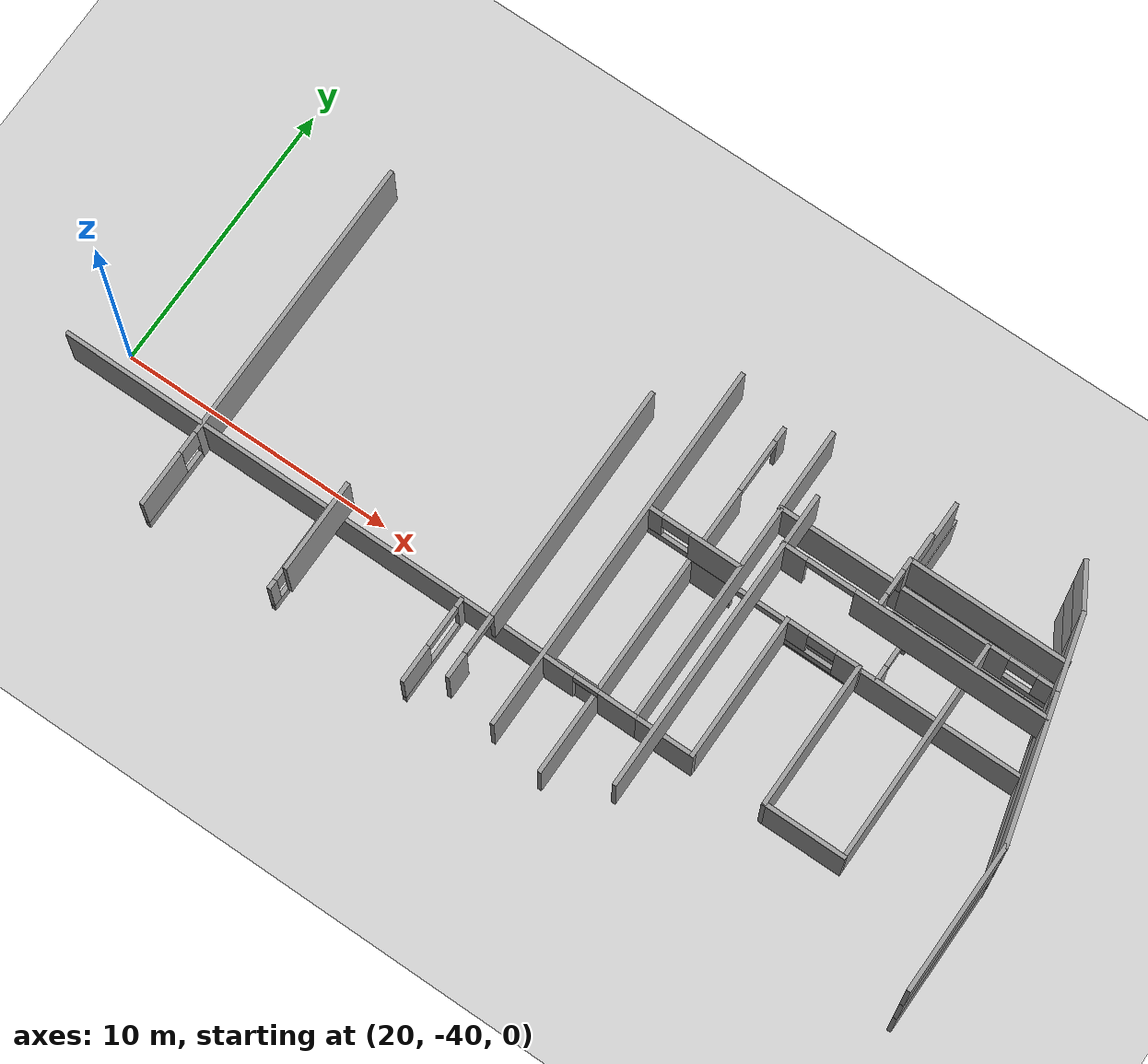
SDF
<sdf version="1.7">
 <world name="default">
  <model name="ground_plane">
   <static>1</static>
   <link name="link">
    <collision name="collision">
     <geometry><plane><normal>0 0 1</normal><size>100 100</size></plane></geometry>
     <surface><friction><ode><mu>100</mu><mu2>50</mu2></ode></friction></surface>
    </collision>
    <visual name="visual">
     <cast_shadows>0</cast_shadows>
     <geometry><plane><normal>0 0 1</normal><size>100 100</size></plane></geometry>
     <material>
      <script><uri>file://media/materials/scripts/gazebo.material</uri><name>Gazebo/Grey</name></script>
     </material>
    </visual>
   </link>
  </model>
  <model name="Anselm_Turmeda">
   <pose>-32.7988 -2.37459 0 0 -0 0</pose>
   <link name="Wall_2">
    <collision name="Wall_2_Collision">
     <geometry><box><size>5.25 0.15 2.5</size></box></geometry>
     <pose>0 0 1.25 0 -0 0</pose>
    </collision>
    <visual name="Wall_2_Visual">
     <pose>0 0 1.25 0 -0 0</pose>
     <geometry><box><size>5.25 0.15 2.5</size></box></geometry>
     <material>
      <script><uri>file://media/materials/scripts/gazebo.material</uri><name>Gazebo/Grey</name></script>
      <ambient>1 1 1 1</ambient>
     </material>
     <meta><layer>0</layer></meta>
    </visual>
    <pose>84.8019 -39.3043 0 0 -0 1.5708</pose>
   </link>
   <link name="Wall_219">
    <collision name="Wall_219_Collision">
     <geometry><box><size>1.5 0.15 1.2</size></box></geometry>
     <pose>0 0 0.6 0 -0 0</pose>
    </collision>
    <visual name="Wall_219_Visual">
     <pose>0 0 0.6 0 -0 0</pose>
     <geometry><box><size>1.5 0.15 1.2</size></box></geometry>
     <material>
      <script><uri>file://media/materials/scripts/gazebo.material</uri><name>Gazebo/Grey</name></script>
      <ambient>1 1 1 1</ambient>
     </material>
     <meta><layer>2</layer></meta>
    </visual>
    <pose>77.7556 -30.4238 5 0 -0 -1.5708</pose>
   </link>
   <link name="Wall_221">
    <collision name="Wall_221_Collision">
     <geometry><box><size>5.7 0.15 2.5</size></box></geometry>
     <pose>0 0 1.25 0 -0 0</pose>
    </collision>
    <visual name="Wall_221_Visual">
     <pose>0 0 1.25 0 -0 0</pose>
     <geometry><box><size>5.7 0.15 2.5</size></box></geometry>
     <material>
      <script><uri>file://media/materials/scripts/gazebo.material</uri><name>Gazebo/Grey</name></script>
      <ambient>1 1 1 1</ambient>
     </material>
     <meta><layer>2</layer></meta>
    </visual>
    <pose>80.5306 -31.0988 5 0 -0 0</pose>
   </link>
   <link name="Wall_224">
    <collision name="Wall_224_Collision">
     <geometry><box><size>10.75 0.15 2.5</size></box></geometry>
     <pose>0 0 1.25 0 -0 0</pose>
    </collision>
    <visual name="Wall_224_Visual">
     <pose>0 0 1.25 0 -0 0</pose>
     <geometry><box><size>10.75 0.15 2.5</size></box></geometry>
     <material>
      <script><uri>file://media/materials/scripts/gazebo.material</uri><name>Gazebo/Grey</name></script>
      <ambient>1 1 1 1</ambient>
     </material>
     <meta><layer>2</layer></meta>
    </visual>
    <pose>74.3895 -36.3854 5 0 -0 -1.5708</pose>
   </link>
   <link name="Wall_231">
    <pose>79.0457 -32.8366 5 0 -0 0</pose>
    <visual name="Wall_231_Visual_0">
     <pose>-4.28471 0 1.25 0 -0 0</pose>
     <geometry><box><size>0.930572 0.15 2.5</size></box></geometry>
     <material>
      <script><uri>file://media/materials/scripts/gazebo.material</uri><name>Gazebo/Grey</name></script>
      <ambient>1 1 1 1</ambient>
     </material>
     <meta><layer>2</layer></meta>
    </visual>
    <collision name="Wall_231_Collision_0">
     <geometry><box><size>0.930572 0.15 2.5</size></box></geometry>
     <pose>-4.28471 0 1.25 0 -0 0</pose>
    </collision>
    <visual name="Wall_231_Visual_1">
     <pose>1.32666 0 1.25 0 -0 0</pose>
     <geometry><box><size>6.84669 0.15 2.5</size></box></geometry>
     <material>
      <script><uri>file://media/materials/scripts/gazebo.material</uri><name>Gazebo/Grey</name></script>
      <ambient>1 1 1 1</ambient>
     </material>
     <meta><layer>2</layer></meta>
    </visual>
    <collision name="Wall_231_Collision_1">
     <geometry><box><size>6.84669 0.15 2.5</size></box></geometry>
     <pose>1.32666 0 1.25 0 -0 0</pose>
    </collision>
    <visual name="Wall_231_Visual_2">
     <pose>-2.95806 0 2.25 0 -0 0</pose>
     <geometry><box><size>1.72274 0.15 0.5</size></box></geometry>
     <material>
      <script><uri>file://media/materials/scripts/gazebo.material</uri><name>Gazebo/Grey</name></script>
      <ambient>1 1 1 1</ambient>
     </material>
     <meta><layer>2</layer></meta>
    </visual>
    <collision name="Wall_231_Collision_2">
     <geometry><box><size>1.72274 0.15 0.5</size></box></geometry>
     <pose>-2.95806 0 2.25 0 -0 0</pose>
    </collision>
   </link>
   <link name="Wall_235">
    <pose>77.7556 -31.8988 5 0 -0 -1.5708</pose>
    <visual name="Wall_235_Visual_0">
     <pose>-0.650398 0 1.25 0 -0 0</pose>
     <geometry><box><size>0.449204 0.15 2.5</size></box></geometry>
     <material>
      <script><uri>file://media/materials/scripts/gazebo.material</uri><name>Gazebo/Grey</name></script>
      <ambient>1 1 1 1</ambient>
     </material>
     <meta><layer>2</layer></meta>
    </visual>
    <collision name="Wall_235_Collision_0">
     <geometry><box><size>0.449204 0.15 2.5</size></box></geometry>
     <pose>-0.650398 0 1.25 0 -0 0</pose>
    </collision>
    <visual name="Wall_235_Visual_1">
     <pose>0.674602 0 1.25 0 -0 0</pose>
     <geometry><box><size>0.400796 0.15 2.5</size></box></geometry>
     <material>
      <script><uri>file://media/materials/scripts/gazebo.material</uri><name>Gazebo/Grey</name></script>
      <ambient>1 1 1 1</ambient>
     </material>
     <meta><layer>2</layer></meta>
    </visual>
    <collision name="Wall_235_Collision_1">
     <geometry><box><size>0.400796 0.15 2.5</size></box></geometry>
     <pose>0.674602 0 1.25 0 -0 0</pose>
    </collision>
    <visual name="Wall_235_Visual_2">
     <pose>0.024204 0 2.25 0 -0 0</pose>
     <geometry><box><size>0.9 0.15 0.5</size></box></geometry>
     <material>
      <script><uri>file://media/materials/scripts/gazebo.material</uri><name>Gazebo/Grey</name></script>
      <ambient>1 1 1 1</ambient>
     </material>
     <meta><layer>2</layer></meta>
    </visual>
    <collision name="Wall_235_Collision_2">
     <geometry><box><size>0.9 0.15 0.5</size></box></geometry>
     <pose>0.024204 0 2.25 0 -0 0</pose>
    </collision>
   </link>
   <link name="Wall_238">
    <pose>68.4981 -36.5099 5 0 -0 1.5708</pose>
    <visual name="Wall_238_Visual_0">
     <pose>-4.91976 0 1.25 0 -0 0</pose>
     <geometry><box><size>0.91049 0.15 2.5</size></box></geometry>
     <material>
      <script><uri>file://media/materials/scripts/gazebo.material</uri><name>Gazebo/Grey</name></script>
      <ambient>1 1 1 1</ambient>
     </material>
     <meta><layer>2</layer></meta>
    </visual>
    <collision name="Wall_238_Collision_0">
     <geometry><box><size>0.91049 0.15 2.5</size></box></geometry>
     <pose>-4.91976 0 1.25 0 -0 0</pose>
    </collision>
    <visual name="Wall_238_Visual_1">
     <pose>1.14833 0 1.25 0 -0 0</pose>
     <geometry><box><size>8.45334 0.15 2.5</size></box></geometry>
     <material>
      <script><uri>file://media/materials/scripts/gazebo.material</uri><name>Gazebo/Grey</name></script>
      <ambient>1 1 1 1</ambient>
     </material>
     <meta><layer>2</layer></meta>
    </visual>
    <collision name="Wall_238_Collision_1">
     <geometry><box><size>8.45334 0.15 2.5</size></box></geometry>
     <pose>1.14833 0 1.25 0 -0 0</pose>
    </collision>
    <visual name="Wall_238_Visual_2">
     <pose>-3.77143 0 2.25 0 -0 0</pose>
     <geometry><box><size>1.38617 0.15 0.5</size></box></geometry>
     <material>
      <script><uri>file://media/materials/scripts/gazebo.material</uri><name>Gazebo/Grey</name></script>
      <ambient>1 1 1 1</ambient>
     </material>
     <meta><layer>2</layer></meta>
    </visual>
    <collision name="Wall_238_Collision_2">
     <geometry><box><size>1.38617 0.15 0.5</size></box></geometry>
     <pose>-3.77143 0 2.25 0 -0 0</pose>
    </collision>
   </link>
   <link name="Wall_265">
    <collision name="Wall_265_Collision">
     <geometry><box><size>3.25 0.15 2.5</size></box></geometry>
     <pose>0 0 1.25 0 -0 0</pose>
    </collision>
    <visual name="Wall_265_Visual">
     <pose>0 0 1.25 0 -0 0</pose>
     <geometry><box><size>3.25 0.15 2.5</size></box></geometry>
     <material>
      <script><uri>file://media/materials/scripts/gazebo.material</uri><name>Gazebo/Grey</name></script>
      <ambient>1 1 1 1</ambient>
     </material>
     <meta><layer>2</layer></meta>
    </visual>
    <pose>62.6155 -40.2977 5 0 -0 1.5708</pose>
   </link>
   <link name="Wall_27">
    <collision name="Wall_27_Collision">
     <geometry><box><size>5.25 0.15 2.5</size></box></geometry>
     <pose>0 0 1.25 0 -0 0</pose>
    </collision>
    <visual name="Wall_27_Visual">
     <pose>0 0 1.25 0 -0 0</pose>
     <geometry><box><size>5.25 0.15 2.5</size></box></geometry>
     <material>
      <script><uri>file://media/materials/scripts/gazebo.material</uri><name>Gazebo/Grey</name></script>
      <ambient>1 1 1 1</ambient>
     </material>
     <meta><layer>1</layer></meta>
    </visual>
    <pose>84.8019 -39.3043 2.5 0 -0 1.5708</pose>
   </link>
   <link name="Wall_28">
    <collision name="Wall_28_Collision">
     <geometry><box><size>5 0.15 2.5</size></box></geometry>
     <pose>0 0 1.25 0 -0 0</pose>
    </collision>
    <visual name="Wall_28_Visual">
     <pose>0 0 1.25 0 -0 0</pose>
     <geometry><box><size>5 0.15 2.5</size></box></geometry>
     <material>
      <script><uri>file://media/materials/scripts/gazebo.material</uri><name>Gazebo/Grey</name></script>
      <ambient>1 1 1 1</ambient>
     </material>
     <meta><layer>1</layer></meta>
    </visual>
    <pose>84.1743 -34.4119 2.5 0 -0 1.8326</pose>
   </link>
   <link name="Wall_29">
    <collision name="Wall_29_Collision">
     <geometry><box><size>2.75 0.15 2.5</size></box></geometry>
     <pose>0 0 1.25 0 -0 0</pose>
    </collision>
    <visual name="Wall_29_Visual">
     <pose>0 0 1.25 0 -0 0</pose>
     <geometry><box><size>2.75 0.15 2.5</size></box></geometry>
     <material>
      <script><uri>file://media/materials/scripts/gazebo.material</uri><name>Gazebo/Grey</name></script>
      <ambient>1 1 1 1</ambient>
     </material>
     <meta><layer>1</layer></meta>
    </visual>
    <pose>83.2102 -30.8139 2.5 0 -0 1.8326</pose>
   </link>
   <link name="Wall_3">
    <collision name="Wall_3_Collision">
     <geometry><box><size>5 0.15 2.5</size></box></geometry>
     <pose>0 0 1.25 0 -0 0</pose>
    </collision>
    <visual name="Wall_3_Visual">
     <pose>0 0 1.25 0 -0 0</pose>
     <geometry><box><size>5 0.15 2.5</size></box></geometry>
     <material>
      <script><uri>file://media/materials/scripts/gazebo.material</uri><name>Gazebo/Grey</name></script>
      <ambient>1 1 1 1</ambient>
     </material>
     <meta><layer>0</layer></meta>
    </visual>
    <pose>84.1743 -34.4119 0 0 -0 1.8326</pose>
   </link>
   <link name="Wall_30">
    <collision name="Wall_30_Collision">
     <geometry><box><size>1.75 0.15 2.5</size></box></geometry>
     <pose>0 0 1.25 0 -0 0</pose>
    </collision>
    <visual name="Wall_30_Visual">
     <pose>0 0 1.25 0 -0 0</pose>
     <geometry><box><size>1.75 0.15 2.5</size></box></geometry>
     <material>
      <script><uri>file://media/materials/scripts/gazebo.material</uri><name>Gazebo/Grey</name></script>
      <ambient>1 1 1 1</ambient>
     </material>
     <meta><layer>1</layer></meta>
    </visual>
    <pose>82.4737 -28.8653 2.5 0 -0 2.0944</pose>
   </link>
   <link name="Wall_4">
    <collision name="Wall_4_Collision">
     <geometry><box><size>2.75 0.15 2.5</size></box></geometry>
     <pose>0 0 1.25 0 -0 0</pose>
    </collision>
    <visual name="Wall_4_Visual">
     <pose>0 0 1.25 0 -0 0</pose>
     <geometry><box><size>2.75 0.15 2.5</size></box></geometry>
     <material>
      <script><uri>file://media/materials/scripts/gazebo.material</uri><name>Gazebo/Grey</name></script>
      <ambient>1 1 1 1</ambient>
     </material>
     <meta><layer>0</layer></meta>
    </visual>
    <pose>83.2102 -30.8139 0 0 -0 1.8326</pose>
   </link>
   <link name="Wall_415">
    <pose>71.7077 -30.9828 0 0 -0 -1.57562</pose>
    <visual name="Wall_415_Visual_0">
     <pose>-2.35717 0 1.25 0 -0 0</pose>
     <geometry><box><size>0.53565 0.15 2.5</size></box></geometry>
     <material>
      <script><uri>file://media/materials/scripts/gazebo.material</uri><name>Gazebo/Grey</name></script>
      <ambient>1 1 1 1</ambient>
     </material>
     <meta><layer>0</layer></meta>
    </visual>
    <collision name="Wall_415_Collision_0">
     <geometry><box><size>0.53565 0.15 2.5</size></box></geometry>
     <pose>-2.35717 0 1.25 0 -0 0</pose>
    </collision>
    <visual name="Wall_415_Visual_1">
     <pose>1.24169 0 1.25 0 -0 0</pose>
     <geometry><box><size>2.76663 0.15 2.5</size></box></geometry>
     <material>
      <script><uri>file://media/materials/scripts/gazebo.material</uri><name>Gazebo/Grey</name></script>
      <ambient>1 1 1 1</ambient>
     </material>
     <meta><layer>0</layer></meta>
    </visual>
    <collision name="Wall_415_Collision_1">
     <geometry><box><size>2.76663 0.15 2.5</size></box></geometry>
     <pose>1.24169 0 1.25 0 -0 0</pose>
    </collision>
    <visual name="Wall_415_Visual_2">
     <pose>-1.11549 0 2.25 0 -0 0</pose>
     <geometry><box><size>1.94772 0.15 0.5</size></box></geometry>
     <material>
      <script><uri>file://media/materials/scripts/gazebo.material</uri><name>Gazebo/Grey</name></script>
      <ambient>1 1 1 1</ambient>
     </material>
     <meta><layer>0</layer></meta>
    </visual>
    <collision name="Wall_415_Collision_2">
     <geometry><box><size>1.94772 0.15 0.5</size></box></geometry>
     <pose>-1.11549 0 2.25 0 -0 0</pose>
    </collision>
   </link>
   <link name="Wall_416">
    <pose>77.7577 -33.5328 0 0 -0 0</pose>
    <visual name="Wall_416_Visual_0">
     <pose>-5.3174 0 1.25 0 -0 0</pose>
     <geometry><box><size>1.63978 0.15 2.5</size></box></geometry>
     <material>
      <script><uri>file://media/materials/scripts/gazebo.material</uri><name>Gazebo/Grey</name></script>
      <ambient>1 1 1 1</ambient>
     </material>
     <meta><layer>0</layer></meta>
    </visual>
    <collision name="Wall_416_Collision_0">
     <geometry><box><size>1.63978 0.15 2.5</size></box></geometry>
     <pose>-5.3174 0 1.25 0 -0 0</pose>
    </collision>
    <visual name="Wall_416_Visual_1">
     <pose>1.80444 0 1.25 0 -0 0</pose>
     <geometry><box><size>8.66571 0.15 2.5</size></box></geometry>
     <material>
      <script><uri>file://media/materials/scripts/gazebo.material</uri><name>Gazebo/Grey</name></script>
      <ambient>1 1 1 1</ambient>
     </material>
     <meta><layer>0</layer></meta>
    </visual>
    <collision name="Wall_416_Collision_1">
     <geometry><box><size>8.66571 0.15 2.5</size></box></geometry>
     <pose>1.80444 0 1.25 0 -0 0</pose>
    </collision>
    <visual name="Wall_416_Visual_2">
     <pose>-3.51296 0 2.25 0 -0 0</pose>
     <geometry><box><size>1.9691 0.15 0.5</size></box></geometry>
     <material>
      <script><uri>file://media/materials/scripts/gazebo.material</uri><name>Gazebo/Grey</name></script>
      <ambient>1 1 1 1</ambient>
     </material>
     <meta><layer>0</layer></meta>
    </visual>
    <collision name="Wall_416_Collision_2">
     <geometry><box><size>1.9691 0.15 0.5</size></box></geometry>
     <pose>-3.51296 0 2.25 0 -0 0</pose>
    </collision>
   </link>
   <link name="Wall_418">
    <pose>80.6074 -31.3384 0 0 -0 0</pose>
    <visual name="Wall_418_Visual_0">
     <pose>-0.813134 0 1.25 0 -0 0</pose>
     <geometry><box><size>4.02373 0.15 2.5</size></box></geometry>
     <material>
      <script><uri>file://media/materials/scripts/gazebo.material</uri><name>Gazebo/Grey</name></script>
      <ambient>1 1 1 1</ambient>
     </material>
     <meta><layer>0</layer></meta>
    </visual>
    <collision name="Wall_418_Collision_0">
     <geometry><box><size>4.02373 0.15 2.5</size></box></geometry>
     <pose>-0.813134 0 1.25 0 -0 0</pose>
    </collision>
    <visual name="Wall_418_Visual_1">
     <pose>2.01187 0 0.6 0 -0 0</pose>
     <geometry><box><size>1.62627 0.15 1.2</size></box></geometry>
     <material>
      <script><uri>file://media/materials/scripts/gazebo.material</uri><name>Gazebo/Grey</name></script>
      <ambient>1 1 1 1</ambient>
     </material>
     <meta><layer>0</layer></meta>
    </visual>
    <collision name="Wall_418_Collision_1">
     <geometry><box><size>1.62627 0.15 1.2</size></box></geometry>
     <pose>2.01187 0 0.6 0 -0 0</pose>
    </collision>
    <visual name="Wall_418_Visual_2">
     <pose>2.41187 0 1.85 0 -0 0</pose>
     <geometry><box><size>0.826268 0.15 1.3</size></box></geometry>
     <material>
      <script><uri>file://media/materials/scripts/gazebo.material</uri><name>Gazebo/Grey</name></script>
      <ambient>1 1 1 1</ambient>
     </material>
     <meta><layer>0</layer></meta>
    </visual>
    <collision name="Wall_418_Collision_2">
     <geometry><box><size>0.826268 0.15 1.3</size></box></geometry>
     <pose>2.41187 0 1.85 0 -0 0</pose>
    </collision>
    <visual name="Wall_418_Visual_3">
     <pose>1.59873 0 2.25 0 -0 0</pose>
     <geometry><box><size>0.8 0.15 0.5</size></box></geometry>
     <material>
      <script><uri>file://media/materials/scripts/gazebo.material</uri><name>Gazebo/Grey</name></script>
      <ambient>1 1 1 1</ambient>
     </material>
     <meta><layer>0</layer></meta>
    </visual>
    <collision name="Wall_418_Collision_3">
     <geometry><box><size>0.8 0.15 0.5</size></box></geometry>
     <pose>1.59873 0 2.25 0 -0 0</pose>
    </collision>
   </link>
   <link name="Wall_420">
    <pose>78.5853 -32.4074 0 0 -0 -1.5708</pose>
    <visual name="Wall_420_Visual_0">
     <pose>-0.896733 0 1.25 0 -0 0</pose>
     <geometry><box><size>0.456533 0.15 2.5</size></box></geometry>
     <material>
      <script><uri>file://media/materials/scripts/gazebo.material</uri><name>Gazebo/Grey</name></script>
      <ambient>1 1 1 1</ambient>
     </material>
     <meta><layer>0</layer></meta>
    </visual>
    <collision name="Wall_420_Collision_0">
     <geometry><box><size>0.456533 0.15 2.5</size></box></geometry>
     <pose>-0.896733 0 1.25 0 -0 0</pose>
    </collision>
    <visual name="Wall_420_Visual_1">
     <pose>0.846555 0 1.25 0 -0 0</pose>
     <geometry><box><size>0.55689 0.15 2.5</size></box></geometry>
     <material>
      <script><uri>file://media/materials/scripts/gazebo.material</uri><name>Gazebo/Grey</name></script>
      <ambient>1 1 1 1</ambient>
     </material>
     <meta><layer>0</layer></meta>
    </visual>
    <collision name="Wall_420_Collision_1">
     <geometry><box><size>0.55689 0.15 2.5</size></box></geometry>
     <pose>0.846555 0 1.25 0 -0 0</pose>
    </collision>
    <visual name="Wall_420_Visual_2">
     <pose>-0.050179 0 2.25 0 -0 0</pose>
     <geometry><box><size>1.23658 0.15 0.5</size></box></geometry>
     <material>
      <script><uri>file://media/materials/scripts/gazebo.material</uri><name>Gazebo/Grey</name></script>
      <ambient>1 1 1 1</ambient>
     </material>
     <meta><layer>0</layer></meta>
    </visual>
    <collision name="Wall_420_Collision_2">
     <geometry><box><size>1.23658 0.15 0.5</size></box></geometry>
     <pose>-0.050179 0 2.25 0 -0 0</pose>
    </collision>
   </link>
   <link name="Wall_429">
    <collision name="Wall_429_Collision">
     <geometry><box><size>3.5 0.15 2.5</size></box></geometry>
     <pose>0 0 1.25 0 -0 0</pose>
    </collision>
    <visual name="Wall_429_Visual">
     <pose>0 0 1.25 0 -0 0</pose>
     <geometry><box><size>3.5 0.15 2.5</size></box></geometry>
     <material>
      <script><uri>file://media/materials/scripts/gazebo.material</uri><name>Gazebo/Grey</name></script>
      <ambient>1 1 1 1</ambient>
     </material>
     <meta><layer>0</layer></meta>
    </visual>
    <pose>79.4308 -29.7581 0 0 -0 0</pose>
   </link>
   <link name="Wall_432">
    <collision name="Wall_432_Collision">
     <geometry><box><size>2 0.15 2.5</size></box></geometry>
     <pose>0 0 1.25 0 -0 0</pose>
    </collision>
    <visual name="Wall_432_Visual">
     <pose>0 0 1.25 0 -0 0</pose>
     <geometry><box><size>2 0.15 2.5</size></box></geometry>
     <material>
      <script><uri>file://media/materials/scripts/gazebo.material</uri><name>Gazebo/Grey</name></script>
      <ambient>1 1 1 1</ambient>
     </material>
     <meta><layer>0</layer></meta>
    </visual>
    <pose>77.7558 -28.8331 0 0 -0 -1.5708</pose>
   </link>
   <link name="Wall_436">
    <collision name="Wall_436_Collision">
     <geometry><box><size>8.35 0.15 2.5</size></box></geometry>
     <pose>0 0 1.25 0 -0 0</pose>
    </collision>
    <visual name="Wall_436_Visual">
     <pose>0 0 1.25 0 -0 0</pose>
     <geometry><box><size>8.35 0.15 2.5</size></box></geometry>
     <material>
      <script><uri>file://media/materials/scripts/gazebo.material</uri><name>Gazebo/Grey</name></script>
      <ambient>1 1 1 1</ambient>
     </material>
     <meta><layer>0</layer></meta>
    </visual>
    <pose>71.6954 -37.6328 0 0 -0 -1.5708</pose>
   </link>
   <link name="Wall_49">
    <collision name="Wall_49_Collision">
     <geometry><box><size>5.25 0.15 2.5</size></box></geometry>
     <pose>0 0 1.25 0 -0 0</pose>
    </collision>
    <visual name="Wall_49_Visual">
     <pose>0 0 1.25 0 -0 0</pose>
     <geometry><box><size>5.25 0.15 2.5</size></box></geometry>
     <material>
      <script><uri>file://media/materials/scripts/gazebo.material</uri><name>Gazebo/Grey</name></script>
      <ambient>1 1 1 1</ambient>
     </material>
     <meta><layer>2</layer></meta>
    </visual>
    <pose>84.8019 -39.3043 5 0 -0 1.5708</pose>
   </link>
   <link name="Wall_5">
    <collision name="Wall_5_Collision">
     <geometry><box><size>1.75 0.15 2.5</size></box></geometry>
     <pose>0 0 1.25 0 -0 0</pose>
    </collision>
    <visual name="Wall_5_Visual">
     <pose>0 0 1.25 0 -0 0</pose>
     <geometry><box><size>1.75 0.15 2.5</size></box></geometry>
     <material>
      <script><uri>file://media/materials/scripts/gazebo.material</uri><name>Gazebo/Grey</name></script>
      <ambient>1 1 1 1</ambient>
     </material>
     <meta><layer>0</layer></meta>
    </visual>
    <pose>82.4737 -28.8653 0 0 -0 2.0944</pose>
   </link>
   <link name="Wall_50">
    <collision name="Wall_50_Collision">
     <geometry><box><size>5 0.15 2.5</size></box></geometry>
     <pose>0 0 1.25 0 -0 0</pose>
    </collision>
    <visual name="Wall_50_Visual">
     <pose>0 0 1.25 0 -0 0</pose>
     <geometry><box><size>5 0.15 2.5</size></box></geometry>
     <material>
      <script><uri>file://media/materials/scripts/gazebo.material</uri><name>Gazebo/Grey</name></script>
      <ambient>1 1 1 1</ambient>
     </material>
     <meta><layer>2</layer></meta>
    </visual>
    <pose>84.1743 -34.4119 5 0 -0 1.8326</pose>
   </link>
   <link name="Wall_51">
    <collision name="Wall_51_Collision">
     <geometry><box><size>2.75 0.15 2.5</size></box></geometry>
     <pose>0 0 1.25 0 -0 0</pose>
    </collision>
    <visual name="Wall_51_Visual">
     <pose>0 0 1.25 0 -0 0</pose>
     <geometry><box><size>2.75 0.15 2.5</size></box></geometry>
     <material>
      <script><uri>file://media/materials/scripts/gazebo.material</uri><name>Gazebo/Grey</name></script>
      <ambient>1 1 1 1</ambient>
     </material>
     <meta><layer>2</layer></meta>
    </visual>
    <pose>83.2102 -30.8139 5 0 -0 1.8326</pose>
   </link>
   <link name="Wall_52">
    <collision name="Wall_52_Collision">
     <geometry><box><size>1.75 0.15 2.5</size></box></geometry>
     <pose>0 0 1.25 0 -0 0</pose>
    </collision>
    <visual name="Wall_52_Visual">
     <pose>0 0 1.25 0 -0 0</pose>
     <geometry><box><size>1.75 0.15 2.5</size></box></geometry>
     <material>
      <script><uri>file://media/materials/scripts/gazebo.material</uri><name>Gazebo/Grey</name></script>
      <ambient>1 1 1 1</ambient>
     </material>
     <meta><layer>2</layer></meta>
    </visual>
    <pose>82.4737 -28.8653 5 0 -0 2.0944</pose>
   </link>
   <link name="Wall_534">
    <pose>56.62 -35.1078 0 0 -0 -1.5708</pose>
    <visual name="Wall_534_Visual_0">
     <pose>-1.42721 0 1.25 0 -0 0</pose>
     <geometry><box><size>10.6456 0.15 2.5</size></box></geometry>
     <material>
      <script><uri>file://media/materials/scripts/gazebo.material</uri><name>Gazebo/Grey</name></script>
      <ambient>1 1 1 1</ambient>
     </material>
     <meta><layer>0</layer></meta>
    </visual>
    <collision name="Wall_534_Collision_0">
     <geometry><box><size>10.6456 0.15 2.5</size></box></geometry>
     <pose>-1.42721 0 1.25 0 -0 0</pose>
    </collision>
    <visual name="Wall_534_Visual_1">
     <pose>5.32279 0 0.25 0 -0 0</pose>
     <geometry><box><size>2.85442 0.15 0.5</size></box></geometry>
     <material>
      <script><uri>file://media/materials/scripts/gazebo.material</uri><name>Gazebo/Grey</name></script>
      <ambient>1 1 1 1</ambient>
     </material>
     <meta><layer>0</layer></meta>
    </visual>
    <collision name="Wall_534_Collision_1">
     <geometry><box><size>2.85442 0.15 0.5</size></box></geometry>
     <pose>5.32279 0 0.25 0 -0 0</pose>
    </collision>
    <visual name="Wall_534_Visual_2">
     <pose>5.72279 0 1.5 0 -0 0</pose>
     <geometry><box><size>2.05442 0.15 2</size></box></geometry>
     <material>
      <script><uri>file://media/materials/scripts/gazebo.material</uri><name>Gazebo/Grey</name></script>
      <ambient>1 1 1 1</ambient>
     </material>
     <meta><layer>0</layer></meta>
    </visual>
    <collision name="Wall_534_Collision_2">
     <geometry><box><size>2.05442 0.15 2</size></box></geometry>
     <pose>5.72279 0 1.5 0 -0 0</pose>
    </collision>
    <visual name="Wall_534_Visual_3">
     <pose>4.29558 0 1.9 0 -0 0</pose>
     <geometry><box><size>0.8 0.15 1.2</size></box></geometry>
     <material>
      <script><uri>file://media/materials/scripts/gazebo.material</uri><name>Gazebo/Grey</name></script>
      <ambient>1 1 1 1</ambient>
     </material>
     <meta><layer>0</layer></meta>
    </visual>
    <collision name="Wall_534_Collision_3">
     <geometry><box><size>0.8 0.15 1.2</size></box></geometry>
     <pose>4.29558 0 1.9 0 -0 0</pose>
    </collision>
   </link>
   <link name="Wall_536">
    <pose>61.4959 -38.6273 0 0 -0 0</pose>
    <visual name="Wall_536_Visual_0">
     <pose>-0.936608 0 1.25 0 -0 0</pose>
     <geometry><box><size>18.4768 0.15 2.5</size></box></geometry>
     <material>
      <script><uri>file://media/materials/scripts/gazebo.material</uri><name>Gazebo/Grey</name></script>
      <ambient>1 1 1 1</ambient>
     </material>
     <meta><layer>0</layer></meta>
    </visual>
    <collision name="Wall_536_Collision_0">
     <geometry><box><size>18.4768 0.15 2.5</size></box></geometry>
     <pose>-0.936608 0 1.25 0 -0 0</pose>
    </collision>
    <visual name="Wall_536_Visual_1">
     <pose>9.76923 0 1.25 0 -0 0</pose>
     <geometry><box><size>0.811536 0.15 2.5</size></box></geometry>
     <material>
      <script><uri>file://media/materials/scripts/gazebo.material</uri><name>Gazebo/Grey</name></script>
      <ambient>1 1 1 1</ambient>
     </material>
     <meta><layer>0</layer></meta>
    </visual>
    <collision name="Wall_536_Collision_1">
     <geometry><box><size>0.811536 0.15 2.5</size></box></geometry>
     <pose>9.76923 0 1.25 0 -0 0</pose>
    </collision>
    <visual name="Wall_536_Visual_2">
     <pose>8.83262 0 2.25 0 -0 0</pose>
     <geometry><box><size>1.06168 0.15 0.5</size></box></geometry>
     <material>
      <script><uri>file://media/materials/scripts/gazebo.material</uri><name>Gazebo/Grey</name></script>
      <ambient>1 1 1 1</ambient>
     </material>
     <meta><layer>0</layer></meta>
    </visual>
    <collision name="Wall_536_Collision_2">
     <geometry><box><size>1.06168 0.15 0.5</size></box></geometry>
     <pose>8.83262 0 2.25 0 -0 0</pose>
    </collision>
   </link>
   <link name="Wall_538">
    <pose>66.5937 -40.242 0 0 -0 -1.5708</pose>
    <visual name="Wall_538_Visual_0">
     <pose>-1.44513 0 1.25 0 -0 0</pose>
     <geometry><box><size>0.359745 0.15 2.5</size></box></geometry>
     <material>
      <script><uri>file://media/materials/scripts/gazebo.material</uri><name>Gazebo/Grey</name></script>
      <ambient>1 1 1 1</ambient>
     </material>
     <meta><layer>0</layer></meta>
    </visual>
    <collision name="Wall_538_Collision_0">
     <geometry><box><size>0.359745 0.15 2.5</size></box></geometry>
     <pose>-1.44513 0 1.25 0 -0 0</pose>
    </collision>
    <visual name="Wall_538_Visual_1">
     <pose>0.179873 0 0.25 0 -0 0</pose>
     <geometry><box><size>2.89025 0.15 0.5</size></box></geometry>
     <material>
      <script><uri>file://media/materials/scripts/gazebo.material</uri><name>Gazebo/Grey</name></script>
      <ambient>1 1 1 1</ambient>
     </material>
     <meta><layer>0</layer></meta>
    </visual>
    <collision name="Wall_538_Collision_1">
     <geometry><box><size>2.89025 0.15 0.5</size></box></geometry>
     <pose>0.179873 0 0.25 0 -0 0</pose>
    </collision>
    <visual name="Wall_538_Visual_2">
     <pose>0.929873 0 1.5 0 -0 0</pose>
     <geometry><box><size>1.39026 0.15 2</size></box></geometry>
     <material>
      <script><uri>file://media/materials/scripts/gazebo.material</uri><name>Gazebo/Grey</name></script>
      <ambient>1 1 1 1</ambient>
     </material>
     <meta><layer>0</layer></meta>
    </visual>
    <collision name="Wall_538_Collision_2">
     <geometry><box><size>1.39026 0.15 2</size></box></geometry>
     <pose>0.929873 0 1.5 0 -0 0</pose>
    </collision>
    <visual name="Wall_538_Visual_3">
     <pose>-0.515255 0 2.25 0 -0 0</pose>
     <geometry><box><size>1.5 0.15 0.5</size></box></geometry>
     <material>
      <script><uri>file://media/materials/scripts/gazebo.material</uri><name>Gazebo/Grey</name></script>
      <ambient>1 1 1 1</ambient>
     </material>
     <meta><layer>0</layer></meta>
    </visual>
    <collision name="Wall_538_Collision_3">
     <geometry><box><size>1.5 0.15 0.5</size></box></geometry>
     <pose>-0.515255 0 2.25 0 -0 0</pose>
    </collision>
   </link>
   <link name="Wall_540">
    <pose>61.4847 -40.1773 0 0 -0 -1.5708</pose>
    <visual name="Wall_540_Visual_0">
     <pose>-0.67341 0 1.25 0 -0 0</pose>
     <geometry><box><size>1.90318 0.15 2.5</size></box></geometry>
     <material>
      <script><uri>file://media/materials/scripts/gazebo.material</uri><name>Gazebo/Grey</name></script>
      <ambient>1 1 1 1</ambient>
     </material>
     <meta><layer>0</layer></meta>
    </visual>
    <collision name="Wall_540_Collision_0">
     <geometry><box><size>1.90318 0.15 2.5</size></box></geometry>
     <pose>-0.67341 0 1.25 0 -0 0</pose>
    </collision>
    <visual name="Wall_540_Visual_1">
     <pose>0.95159 0 0.25 0 -0 0</pose>
     <geometry><box><size>1.34682 0.15 0.5</size></box></geometry>
     <material>
      <script><uri>file://media/materials/scripts/gazebo.material</uri><name>Gazebo/Grey</name></script>
      <ambient>1 1 1 1</ambient>
     </material>
     <meta><layer>0</layer></meta>
    </visual>
    <collision name="Wall_540_Collision_1">
     <geometry><box><size>1.34682 0.15 0.5</size></box></geometry>
     <pose>0.95159 0 0.25 0 -0 0</pose>
    </collision>
    <visual name="Wall_540_Visual_2">
     <pose>1.45159 0 1.5 0 -0 0</pose>
     <geometry><box><size>0.346821 0.15 2</size></box></geometry>
     <material>
      <script><uri>file://media/materials/scripts/gazebo.material</uri><name>Gazebo/Grey</name></script>
      <ambient>1 1 1 1</ambient>
     </material>
     <meta><layer>0</layer></meta>
    </visual>
    <collision name="Wall_540_Collision_2">
     <geometry><box><size>0.346821 0.15 2</size></box></geometry>
     <pose>1.45159 0 1.5 0 -0 0</pose>
    </collision>
    <visual name="Wall_540_Visual_3">
     <pose>0.778179 0 2 0 -0 0</pose>
     <geometry><box><size>1 0.15 1</size></box></geometry>
     <material>
      <script><uri>file://media/materials/scripts/gazebo.material</uri><name>Gazebo/Grey</name></script>
      <ambient>1 1 1 1</ambient>
     </material>
     <meta><layer>0</layer></meta>
    </visual>
    <collision name="Wall_540_Collision_3">
     <geometry><box><size>1 0.15 1</size></box></geometry>
     <pose>0.778179 0 2 0 -0 0</pose>
    </collision>
   </link>
   <link name="Wall_71">
    <collision name="Wall_71_Collision">
     <geometry><box><size>3.25 0.15 2.5</size></box></geometry>
     <pose>0 0 1.25 0 -0 0</pose>
    </collision>
    <visual name="Wall_71_Visual">
     <pose>0 0 1.25 0 -0 0</pose>
     <geometry><box><size>3.25 0.15 2.5</size></box></geometry>
     <material>
      <script><uri>file://media/materials/scripts/gazebo.material</uri><name>Gazebo/Grey</name></script>
      <ambient>1 1 1 1</ambient>
     </material>
     <meta><layer>1</layer></meta>
    </visual>
    <pose>77.7237 -29.7225 2.5 0 -0 -1.5708</pose>
   </link>
   <link name="Wall_72">
    <pose>80.5237 -31.2725 2.5 0 -0 0</pose>
    <visual name="Wall_72_Visual_0">
     <pose>-0.849051 0 1.25 0 -0 0</pose>
     <geometry><box><size>4.0519 0.15 2.5</size></box></geometry>
     <material>
      <script><uri>file://media/materials/scripts/gazebo.material</uri><name>Gazebo/Grey</name></script>
      <ambient>1 1 1 1</ambient>
     </material>
     <meta><layer>1</layer></meta>
    </visual>
    <collision name="Wall_72_Collision_0">
     <geometry><box><size>4.0519 0.15 2.5</size></box></geometry>
     <pose>-0.849051 0 1.25 0 -0 0</pose>
    </collision>
    <visual name="Wall_72_Visual_1">
     <pose>2.02595 0 0.25 0 -0 0</pose>
     <geometry><box><size>1.6981 0.15 0.5</size></box></geometry>
     <material>
      <script><uri>file://media/materials/scripts/gazebo.material</uri><name>Gazebo/Grey</name></script>
      <ambient>1 1 1 1</ambient>
     </material>
     <meta><layer>1</layer></meta>
    </visual>
    <collision name="Wall_72_Collision_1">
     <geometry><box><size>1.6981 0.15 0.5</size></box></geometry>
     <pose>2.02595 0 0.25 0 -0 0</pose>
    </collision>
    <visual name="Wall_72_Visual_2">
     <pose>2.52595 0 1.5 0 -0 0</pose>
     <geometry><box><size>0.698101 0.15 2</size></box></geometry>
     <material>
      <script><uri>file://media/materials/scripts/gazebo.material</uri><name>Gazebo/Grey</name></script>
      <ambient>1 1 1 1</ambient>
     </material>
     <meta><layer>1</layer></meta>
    </visual>
    <collision name="Wall_72_Collision_2">
     <geometry><box><size>0.698101 0.15 2</size></box></geometry>
     <pose>2.52595 0 1.5 0 -0 0</pose>
    </collision>
    <visual name="Wall_72_Visual_3">
     <pose>1.6769 0 2 0 -0 0</pose>
     <geometry><box><size>1 0.15 1</size></box></geometry>
     <material>
      <script><uri>file://media/materials/scripts/gazebo.material</uri><name>Gazebo/Grey</name></script>
      <ambient>1 1 1 1</ambient>
     </material>
     <meta><layer>1</layer></meta>
    </visual>
    <collision name="Wall_72_Collision_3">
     <geometry><box><size>1 0.15 1</size></box></geometry>
     <pose>1.6769 0 2 0 -0 0</pose>
    </collision>
   </link>
   <link name="Wall_74">
    <collision name="Wall_74_Collision">
     <geometry><box><size>4.5 0.15 2.5</size></box></geometry>
     <pose>0 0 1.25 0 -0 0</pose>
    </collision>
    <visual name="Wall_74_Visual">
     <pose>0 0 1.25 0 -0 0</pose>
     <geometry><box><size>4.5 0.15 2.5</size></box></geometry>
     <material>
      <script><uri>file://media/materials/scripts/gazebo.material</uri><name>Gazebo/Grey</name></script>
      <ambient>1 1 1 1</ambient>
     </material>
     <meta><layer>1</layer></meta>
    </visual>
    <pose>75.5487 -31.2725 2.5 0 -0 3.14159</pose>
   </link>
   <link name="Wall_75">
    <collision name="Wall_75_Collision">
     <geometry><box><size>3 0.15 2.5</size></box></geometry>
     <pose>0 0 1.25 0 -0 0</pose>
    </collision>
    <visual name="Wall_75_Visual">
     <pose>0 0 1.25 0 -0 0</pose>
     <geometry><box><size>3 0.15 2.5</size></box></geometry>
     <material>
      <script><uri>file://media/materials/scripts/gazebo.material</uri><name>Gazebo/Grey</name></script>
      <ambient>1 1 1 1</ambient>
     </material>
     <meta><layer>1</layer></meta>
    </visual>
    <pose>73.3737 -29.8475 2.5 0 -0 1.5708</pose>
   </link>
   <link name="Wall_78">
    <collision name="Wall_78_Collision">
     <geometry><box><size>13.5 0.15 2.5</size></box></geometry>
     <pose>0 0 1.25 0 -0 0</pose>
    </collision>
    <visual name="Wall_78_Visual">
     <pose>0 0 1.25 0 -0 0</pose>
     <geometry><box><size>13.5 0.15 2.5</size></box></geometry>
     <material>
      <script><uri>file://media/materials/scripts/gazebo.material</uri><name>Gazebo/Grey</name></script>
      <ambient>1 1 1 1</ambient>
     </material>
     <meta><layer>1</layer></meta>
    </visual>
    <pose>70.0237 -35.0975 2.5 0 -0 -1.5708</pose>
   </link>
   <link name="Wall_80">
    <collision name="Wall_80_Collision">
     <geometry><box><size>8 0.15 2.5</size></box></geometry>
     <pose>0 0 1.25 0 -0 0</pose>
    </collision>
    <visual name="Wall_80_Visual">
     <pose>0 0 1.25 0 -0 0</pose>
     <geometry><box><size>8 0.15 2.5</size></box></geometry>
     <material>
      <script><uri>file://media/materials/scripts/gazebo.material</uri><name>Gazebo/Grey</name></script>
      <ambient>1 1 1 1</ambient>
     </material>
     <meta><layer>1</layer></meta>
    </visual>
    <pose>80.9556 -35.2698 2.5 0 -0 -1.5708</pose>
   </link>
   <link name="Wall_81">
    <collision name="Wall_81_Collision">
     <geometry><box><size>3 0.15 2.5</size></box></geometry>
     <pose>0 0 1.25 0 -0 0</pose>
    </collision>
    <visual name="Wall_81_Visual">
     <pose>0 0 1.25 0 -0 0</pose>
     <geometry><box><size>3 0.15 2.5</size></box></geometry>
     <material>
      <script><uri>file://media/materials/scripts/gazebo.material</uri><name>Gazebo/Grey</name></script>
      <ambient>1 1 1 1</ambient>
     </material>
     <meta><layer>1</layer></meta>
    </visual>
    <pose>79.5306 -39.1948 2.5 0 -0 3.14159</pose>
   </link>
   <link name="Wall_82">
    <collision name="Wall_82_Collision">
     <geometry><box><size>5.25 0.15 2.5</size></box></geometry>
     <pose>0 0 1.25 0 -0 0</pose>
    </collision>
    <visual name="Wall_82_Visual">
     <pose>0 0 1.25 0 -0 0</pose>
     <geometry><box><size>5.25 0.15 2.5</size></box></geometry>
     <material>
      <script><uri>file://media/materials/scripts/gazebo.material</uri><name>Gazebo/Grey</name></script>
      <ambient>1 1 1 1</ambient>
     </material>
     <meta><layer>1</layer></meta>
    </visual>
    <pose>78.1056 -36.6448 2.5 0 -0 1.5708</pose>
   </link>
   <link name="Wall_83">
    <pose>76.8056 -34.0948 2.5 0 -0 3.14159</pose>
    <visual name="Wall_83_Visual_0">
     <pose>-0.931812 0 1.25 0 -0 0</pose>
     <geometry><box><size>0.886375 0.15 2.5</size></box></geometry>
     <material>
      <script><uri>file://media/materials/scripts/gazebo.material</uri><name>Gazebo/Grey</name></script>
      <ambient>1 1 1 1</ambient>
     </material>
     <meta><layer>1</layer></meta>
    </visual>
    <collision name="Wall_83_Collision_0">
     <geometry><box><size>0.886375 0.15 2.5</size></box></geometry>
     <pose>-0.931812 0 1.25 0 -0 0</pose>
    </collision>
    <visual name="Wall_83_Visual_1">
     <pose>0.443188 0 0.25 0 -0 0</pose>
     <geometry><box><size>1.86363 0.15 0.5</size></box></geometry>
     <material>
      <script><uri>file://media/materials/scripts/gazebo.material</uri><name>Gazebo/Grey</name></script>
      <ambient>1 1 1 1</ambient>
     </material>
     <meta><layer>1</layer></meta>
    </visual>
    <collision name="Wall_83_Collision_1">
     <geometry><box><size>1.86363 0.15 0.5</size></box></geometry>
     <pose>0.443188 0 0.25 0 -0 0</pose>
    </collision>
    <visual name="Wall_83_Visual_2">
     <pose>0.943188 0 1.5 0 -0 0</pose>
     <geometry><box><size>0.863625 0.15 2</size></box></geometry>
     <material>
      <script><uri>file://media/materials/scripts/gazebo.material</uri><name>Gazebo/Grey</name></script>
      <ambient>1 1 1 1</ambient>
     </material>
     <meta><layer>1</layer></meta>
    </visual>
    <collision name="Wall_83_Collision_2">
     <geometry><box><size>0.863625 0.15 2</size></box></geometry>
     <pose>0.943188 0 1.5 0 -0 0</pose>
    </collision>
    <visual name="Wall_83_Visual_3">
     <pose>0.011375 0 2 0 -0 0</pose>
     <geometry><box><size>1 0.15 1</size></box></geometry>
     <material>
      <script><uri>file://media/materials/scripts/gazebo.material</uri><name>Gazebo/Grey</name></script>
      <ambient>1 1 1 1</ambient>
     </material>
     <meta><layer>1</layer></meta>
    </visual>
    <collision name="Wall_83_Collision_3">
     <geometry><box><size>1 0.15 1</size></box></geometry>
     <pose>0.011375 0 2 0 -0 0</pose>
    </collision>
   </link>
   <link name="Wall_84">
    <collision name="Wall_84_Collision">
     <geometry><box><size>5.25 0.15 2.5</size></box></geometry>
     <pose>0 0 1.25 0 -0 0</pose>
    </collision>
    <visual name="Wall_84_Visual">
     <pose>0 0 1.25 0 -0 0</pose>
     <geometry><box><size>5.25 0.15 2.5</size></box></geometry>
     <material>
      <script><uri>file://media/materials/scripts/gazebo.material</uri><name>Gazebo/Grey</name></script>
      <ambient>1 1 1 1</ambient>
     </material>
     <meta><layer>1</layer></meta>
    </visual>
    <pose>75.5056 -36.6448 2.5 0 -0 -1.5708</pose>
   </link>
   <link name="Wall_85">
    <collision name="Wall_85_Collision">
     <geometry><box><size>2.25 0.15 2.5</size></box></geometry>
     <pose>0 0 1.25 0 -0 0</pose>
    </collision>
    <visual name="Wall_85_Visual">
     <pose>0 0 1.25 0 -0 0</pose>
     <geometry><box><size>2.25 0.15 2.5</size></box></geometry>
     <material>
      <script><uri>file://media/materials/scripts/gazebo.material</uri><name>Gazebo/Grey</name></script>
      <ambient>1 1 1 1</ambient>
     </material>
     <meta><layer>1</layer></meta>
    </visual>
    <pose>74.4556 -39.1948 2.5 0 -0 3.14159</pose>
   </link>
   <link name="Wall_86">
    <collision name="Wall_86_Collision">
     <geometry><box><size>8 0.15 2.5</size></box></geometry>
     <pose>0 0 1.25 0 -0 0</pose>
    </collision>
    <visual name="Wall_86_Visual">
     <pose>0 0 1.25 0 -0 0</pose>
     <geometry><box><size>8 0.15 2.5</size></box></geometry>
     <material>
      <script><uri>file://media/materials/scripts/gazebo.material</uri><name>Gazebo/Grey</name></script>
      <ambient>1 1 1 1</ambient>
     </material>
     <meta><layer>1</layer></meta>
    </visual>
    <pose>73.4056 -35.2698 2.5 0 -0 1.5708</pose>
   </link>
   <link name="Wall_89">
    <pose>71.7306 -39.1948 2.5 0 -0 3.14159</pose>
    <visual name="Wall_89_Visual_0">
     <pose>-1.05837 0 1.25 0 -0 0</pose>
     <geometry><box><size>1.38327 0.15 2.5</size></box></geometry>
     <material>
      <script><uri>file://media/materials/scripts/gazebo.material</uri><name>Gazebo/Grey</name></script>
      <ambient>1 1 1 1</ambient>
     </material>
     <meta><layer>1</layer></meta>
    </visual>
    <collision name="Wall_89_Collision_0">
     <geometry><box><size>1.38327 0.15 2.5</size></box></geometry>
     <pose>-1.05837 0 1.25 0 -0 0</pose>
    </collision>
    <visual name="Wall_89_Visual_1">
     <pose>1.14163 0 1.25 0 -0 0</pose>
     <geometry><box><size>1.21673 0.15 2.5</size></box></geometry>
     <material>
      <script><uri>file://media/materials/scripts/gazebo.material</uri><name>Gazebo/Grey</name></script>
      <ambient>1 1 1 1</ambient>
     </material>
     <meta><layer>1</layer></meta>
    </visual>
    <collision name="Wall_89_Collision_1">
     <geometry><box><size>1.21673 0.15 2.5</size></box></geometry>
     <pose>1.14163 0 1.25 0 -0 0</pose>
    </collision>
    <visual name="Wall_89_Visual_2">
     <pose>0.083267 0 2.25 0 -0 0</pose>
     <geometry><box><size>0.9 0.15 0.5</size></box></geometry>
     <material>
      <script><uri>file://media/materials/scripts/gazebo.material</uri><name>Gazebo/Grey</name></script>
      <ambient>1 1 1 1</ambient>
     </material>
     <meta><layer>1</layer></meta>
    </visual>
    <collision name="Wall_89_Collision_2">
     <geometry><box><size>0.9 0.15 0.5</size></box></geometry>
     <pose>0.083267 0 2.25 0 -0 0</pose>
    </collision>
   </link>
   <link name="Wall_93">
    <pose>71.7203 -33.5333 2.5 0 -0 3.14159</pose>
    <visual name="Wall_93_Visual_0">
     <pose>-0.806072 0 1.25 0 -0 0</pose>
     <geometry><box><size>1.88786 0.15 2.5</size></box></geometry>
     <material>
      <script><uri>file://media/materials/scripts/gazebo.material</uri><name>Gazebo/Grey</name></script>
      <ambient>1 1 1 1</ambient>
     </material>
     <meta><layer>1</layer></meta>
    </visual>
    <collision name="Wall_93_Collision_0">
     <geometry><box><size>1.88786 0.15 2.5</size></box></geometry>
     <pose>-0.806072 0 1.25 0 -0 0</pose>
    </collision>
    <visual name="Wall_93_Visual_1">
     <pose>0.943928 0 0.25 0 -0 0</pose>
     <geometry><box><size>1.61214 0.15 0.5</size></box></geometry>
     <material>
      <script><uri>file://media/materials/scripts/gazebo.material</uri><name>Gazebo/Grey</name></script>
      <ambient>1 1 1 1</ambient>
     </material>
     <meta><layer>1</layer></meta>
    </visual>
    <collision name="Wall_93_Collision_1">
     <geometry><box><size>1.61214 0.15 0.5</size></box></geometry>
     <pose>0.943928 0 0.25 0 -0 0</pose>
    </collision>
    <visual name="Wall_93_Visual_2">
     <pose>1.44393 0 1.5 0 -0 0</pose>
     <geometry><box><size>0.612144 0.15 2</size></box></geometry>
     <material>
      <script><uri>file://media/materials/scripts/gazebo.material</uri><name>Gazebo/Grey</name></script>
      <ambient>1 1 1 1</ambient>
     </material>
     <meta><layer>1</layer></meta>
    </visual>
    <collision name="Wall_93_Collision_2">
     <geometry><box><size>0.612144 0.15 2</size></box></geometry>
     <pose>1.44393 0 1.5 0 -0 0</pose>
    </collision>
    <visual name="Wall_93_Visual_3">
     <pose>0.637856 0 2 0 -0 0</pose>
     <geometry><box><size>1 0.15 1</size></box></geometry>
     <material>
      <script><uri>file://media/materials/scripts/gazebo.material</uri><name>Gazebo/Grey</name></script>
      <ambient>1 1 1 1</ambient>
     </material>
     <meta><layer>1</layer></meta>
    </visual>
    <collision name="Wall_93_Collision_3">
     <geometry><box><size>1 0.15 1</size></box></geometry>
     <pose>0.637856 0 2 0 -0 0</pose>
    </collision>
   </link>
   <static>1</static>
  </model>
 </world>
</sdf>
